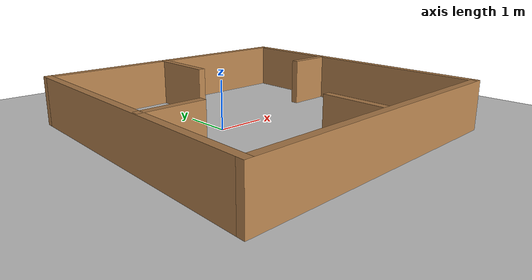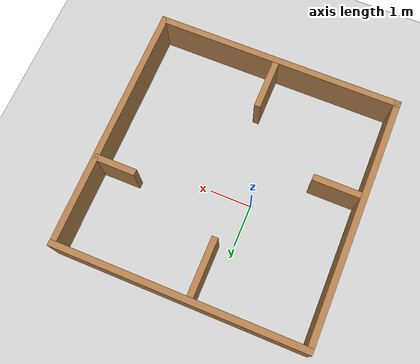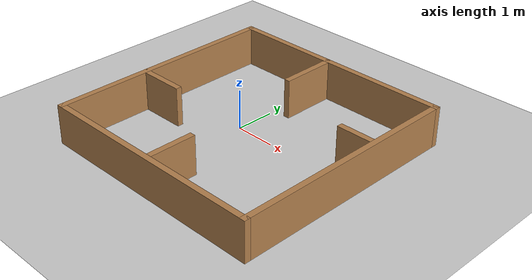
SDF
<sdf version="1.7">
 <world name="default">
  <light name="sun" type="directional">
   <pose>0 0 10 0 -0 0</pose>
   <diffuse>0.8 0.8 0.8 1</diffuse>
   <specular>0.2 0.2 0.2 1</specular>
   <attenuation>
    <range>1000</range>
    <constant>0.9</constant>
    <linear>0.01</linear>
    <quadratic>0.001</quadratic>
   </attenuation>
   <direction>-0.5 0.1 -0.9</direction>
   <spot><inner_angle>0</inner_angle><outer_angle>0</outer_angle><falloff>0</falloff></spot>
  </light>
  <model name="ground_plane">
   <static>1</static>
   <link name="link">
    <collision name="collision">
     <geometry><plane><normal>0 0 1</normal><size>100 100</size></plane></geometry>
     <surface><friction><ode><mu>100</mu><mu2>50</mu2></ode></friction></surface>
    </collision>
    <visual name="visual">
     <cast_shadows>0</cast_shadows>
     <geometry><plane><normal>0 0 1</normal><size>100 100</size></plane></geometry>
     <material>
      <script><uri>file://media/materials/scripts/gazebo.material</uri><name>Gazebo/Grey</name></script>
     </material>
    </visual>
   </link>
  </model>
  <gravity>0 0 -9.8</gravity>
  <magnetic_field>6e-06 2.3e-05 -4.2e-05</magnetic_field>
  <atmosphere type="adiabatic"/>
  <physics type="ode">
   <max_step_size>0.001</max_step_size>
   <real_time_factor>1</real_time_factor>
   <real_time_update_rate>1000</real_time_update_rate>
  </physics>
  <scene><ambient>0.4 0.4 0.4 1</ambient><background>0.7 0.7 0.7 1</background><shadows>1</shadows></scene>
  <audio><device>default</device></audio>
  <spherical_coordinates>
   <surface_model>EARTH_WGS84</surface_model>
   <latitude_deg>0</latitude_deg>
   <longitude_deg>0</longitude_deg>
   <elevation>0</elevation>
   <heading_deg>0</heading_deg>
  </spherical_coordinates>
  <model name="Environnemnt">
   <pose>0.635336 -0.341507 0 0 -0 0</pose>
   <link name="Wall_0">
    <collision name="Wall_0_Collision">
     <geometry><box><size>6 0.15 1</size></box></geometry>
     <pose>0 0 0.5 0 -0 0</pose>
    </collision>
    <visual name="Wall_0_Visual">
     <pose>0 0 0.5 0 -0 0</pose>
     <geometry><box><size>6 0.15 1</size></box></geometry>
     <material>
      <script><uri>file://media/materials/scripts/gazebo.material</uri><name>Gazebo/Wood</name></script>
      <ambient>1 1 1 1</ambient>
     </material>
     <meta><layer>0</layer></meta>
    </visual>
    <pose>0 2.943 0 0 -0 0</pose>
   </link>
   <link name="Wall_11">
    <collision name="Wall_11_Collision">
     <geometry><box><size>1.25 0.15 1</size></box></geometry>
     <pose>0 0 0.5 0 -0 0</pose>
    </collision>
    <visual name="Wall_11_Visual">
     <pose>0 0 0.5 0 -0 0</pose>
     <geometry><box><size>1.25 0.15 1</size></box></geometry>
     <material>
      <script><uri>file://media/materials/scripts/gazebo.material</uri><name>Gazebo/Wood</name></script>
      <ambient>1 1 1 1</ambient>
     </material>
     <meta><layer>0</layer></meta>
    </visual>
    <pose>-2.352 -0.556 0 0 -0 0</pose>
   </link>
   <link name="Wall_13">
    <collision name="Wall_13_Collision">
     <geometry><box><size>1.25 0.15 1</size></box></geometry>
     <pose>0 0 0.5 0 -0 0</pose>
    </collision>
    <visual name="Wall_13_Visual">
     <pose>0 0 0.5 0 -0 0</pose>
     <geometry><box><size>1.25 0.15 1</size></box></geometry>
     <material>
      <script><uri>file://media/materials/scripts/gazebo.material</uri><name>Gazebo/Wood</name></script>
      <ambient>1 1 1 1</ambient>
     </material>
     <meta><layer>0</layer></meta>
    </visual>
    <pose>0.034 -2.299 0 0 -0 1.5708</pose>
   </link>
   <link name="Wall_2">
    <collision name="Wall_2_Collision">
     <geometry><box><size>6.03552 0.15 1</size></box></geometry>
     <pose>0 0 0.5 0 -0 0</pose>
    </collision>
    <visual name="Wall_2_Visual">
     <pose>0 0 0.5 0 -0 0</pose>
     <geometry><box><size>6.03552 0.15 1</size></box></geometry>
     <material>
      <script><uri>file://media/materials/scripts/gazebo.material</uri><name>Gazebo/Wood</name></script>
      <ambient>1 1 1 1</ambient>
     </material>
     <meta><layer>0</layer></meta>
    </visual>
    <pose>2.925 0 0 0 -0 1.5708</pose>
   </link>
   <link name="Wall_4">
    <collision name="Wall_4_Collision">
     <geometry><box><size>6.03518 0.15 1</size></box></geometry>
     <pose>0 0 0.5 0 -0 0</pose>
    </collision>
    <visual name="Wall_4_Visual">
     <pose>0 0 0.5 0 -0 0</pose>
     <geometry><box><size>6.03518 0.15 1</size></box></geometry>
     <material>
      <script><uri>file://media/materials/scripts/gazebo.material</uri><name>Gazebo/Wood</name></script>
      <ambient>1 1 1 1</ambient>
     </material>
     <meta><layer>0</layer></meta>
    </visual>
    <pose>-2.925 0 0 0 -0 -1.5708</pose>
   </link>
   <link name="Wall_5">
    <collision name="Wall_5_Collision">
     <geometry><box><size>6.00011 0.15 1</size></box></geometry>
     <pose>0 0 0.5 0 -0 0</pose>
    </collision>
    <visual name="Wall_5_Visual">
     <pose>0 0 0.5 0 -0 0</pose>
     <geometry><box><size>6.00011 0.15 1</size></box></geometry>
     <material>
      <script><uri>file://media/materials/scripts/gazebo.material</uri><name>Gazebo/Wood</name></script>
      <ambient>1 1 1 1</ambient>
     </material>
     <meta><layer>0</layer></meta>
    </visual>
    <pose>0 -2.943 0 0 -0 0</pose>
   </link>
   <link name="Wall_7">
    <collision name="Wall_7_Collision">
     <geometry><box><size>1 0.15 1</size></box></geometry>
     <pose>0 0 0.5 0 -0 0</pose>
    </collision>
    <visual name="Wall_7_Visual">
     <pose>0 0 0.5 0 -0 0</pose>
     <geometry><box><size>1 0.15 1</size></box></geometry>
     <material>
      <script><uri>file://media/materials/scripts/gazebo.material</uri><name>Gazebo/Wood</name></script>
      <ambient>1 1 1 1</ambient>
     </material>
     <meta><layer>0</layer></meta>
    </visual>
    <pose>2.445 0.832 0 0 -0 3.14159</pose>
   </link>
   <link name="Wall_9">
    <collision name="Wall_9_Collision">
     <geometry><box><size>1.5 0.15 1</size></box></geometry>
     <pose>0 0 0.5 0 -0 0</pose>
    </collision>
    <visual name="Wall_9_Visual">
     <pose>0 0 0.5 0 -0 0</pose>
     <geometry><box><size>1.5 0.15 1</size></box></geometry>
     <material>
      <script><uri>file://media/materials/scripts/gazebo.material</uri><name>Gazebo/Wood</name></script>
      <ambient>1 1 1 1</ambient>
     </material>
     <meta><layer>0</layer></meta>
    </visual>
    <pose>-0.247 2.248 0 0 -0 -1.5708</pose>
   </link>
   <static>1</static>
  </model>
 </world>
</sdf>
